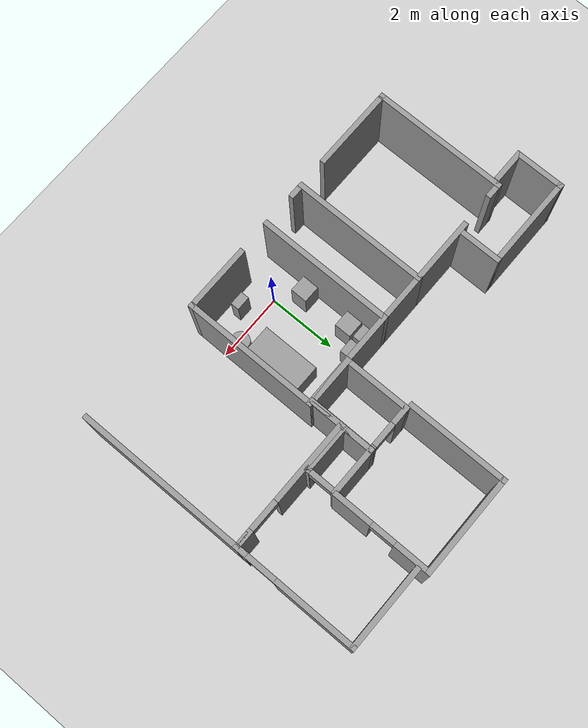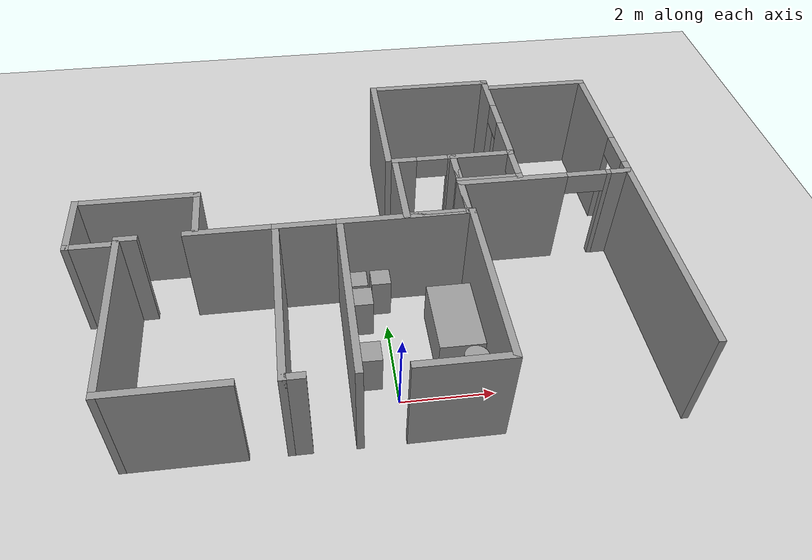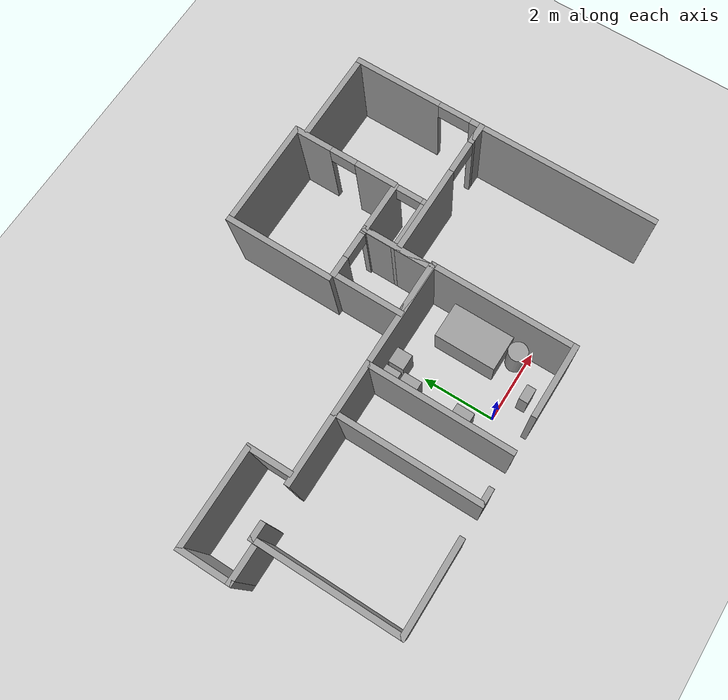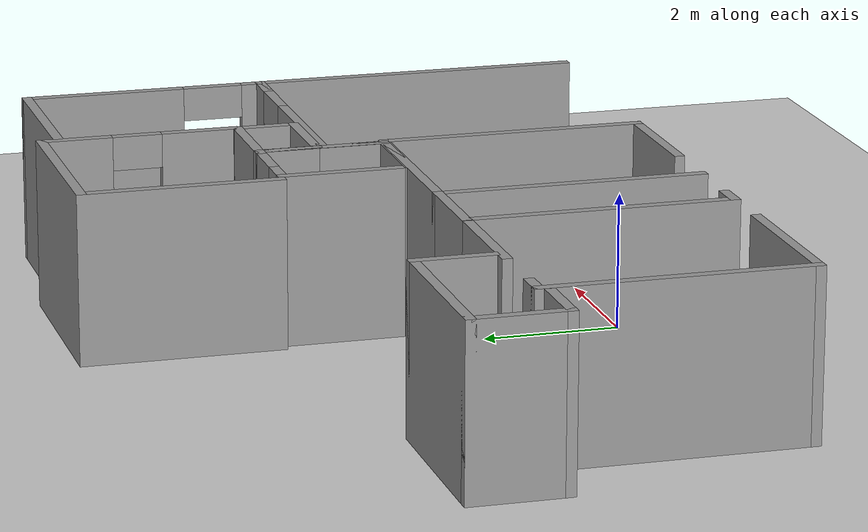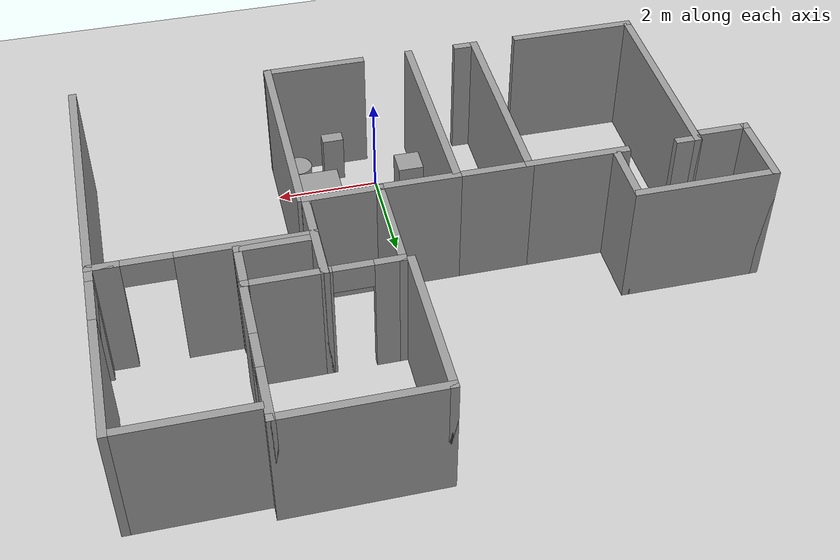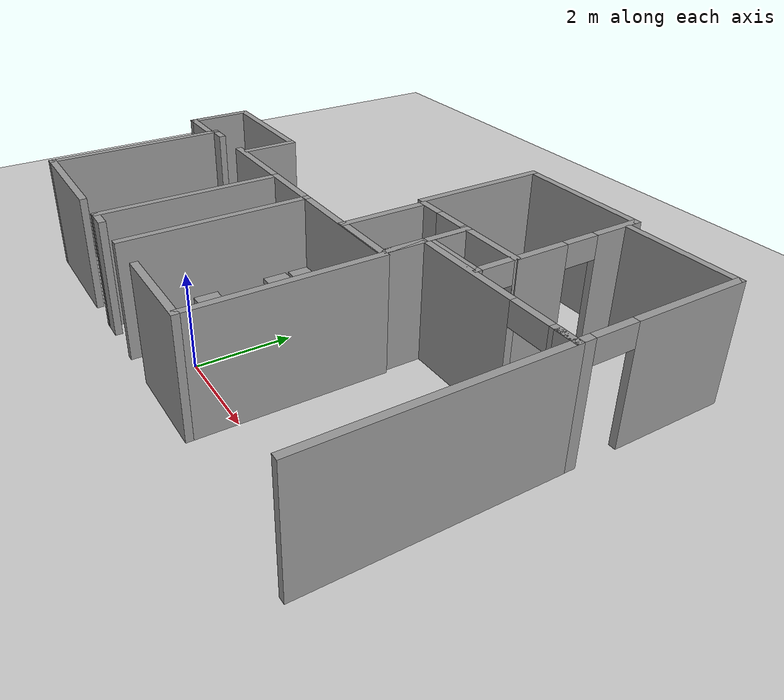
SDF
<sdf version="1.9">
 <world name="default">
  <model name="ground_plane">
   <static>true</static>
   <link name="link">
    <collision name="collision">
     <geometry><plane><normal>0 0 1</normal><size>100 100</size></plane></geometry>
     <surface><friction><ode><mu>100</mu><mu2>50</mu2></ode></friction></surface>
    </collision>
    <visual name="visual">
     <cast_shadows>false</cast_shadows>
     <geometry><plane><normal>0 0 1</normal><size>100 100</size></plane></geometry>
     <material>
      <script><uri>file://media/materials/scripts/gazebo.material</uri><name>Gazebo/Grey</name></script>
     </material>
    </visual>
   </link>
  </model>
  <model name="cma_escritorio">
   <pose>-1.7968200000000001 1.02121 0 0 0 0</pose>
   <link name="Wall_11">
    <collision name="Wall_11_Collision">
     <geometry><box><size>2 0.14999999999999999 2.5</size></box></geometry>
     <pose>0 0 1.25 0 0 0</pose>
    </collision>
    <visual name="Wall_11_Visual">
     <pose>0 0 1.25 0 0 0</pose>
     <geometry><box><size>2 0.14999999999999999 2.5</size></box></geometry>
     <material>
      <script><uri>file://media/materials/scripts/gazebo.material</uri><name>Gazebo/Grey</name></script>
      <ambient>1 1 1 1</ambient>
     </material>
    </visual>
    <pose>-1.3999999999999999 1.9299999999999999 0 0 0 3.1415899999999999</pose>
   </link>
   <link name="Wall_2">
    <collision name="Wall_2_Collision">
     <geometry><box><size>4 0.14999999999999999 2.5</size></box></geometry>
     <pose>0 0 1.25 0 0 0</pose>
    </collision>
    <visual name="Wall_2_Visual">
     <pose>0 0 1.25 0 0 0</pose>
     <geometry><box><size>4 0.14999999999999999 2.5</size></box></geometry>
     <material>
      <script><uri>file://media/materials/scripts/gazebo.material</uri><name>Gazebo/Grey</name></script>
      <ambient>1 1 1 1</ambient>
     </material>
    </visual>
    <pose>0.875 0.0050000000000000001 0 0 0 1.5708</pose>
   </link>
   <link name="Wall_25">
    <collision name="Wall_25_Collision">
     <geometry><box><size>2.5 0.14999999999999999 2.5</size></box></geometry>
     <pose>0 0 1.25 0 0 0</pose>
    </collision>
    <visual name="Wall_25_Visual">
     <pose>0 0 1.25 0 0 0</pose>
     <geometry><box><size>2.5 0.14999999999999999 2.5</size></box></geometry>
     <material>
      <script><uri>file://media/materials/scripts/gazebo.material</uri><name>Gazebo/Grey</name></script>
      <ambient>1 1 1 1</ambient>
     </material>
    </visual>
    <pose>-2.5499999999999998 -1.9299999999999999 0 0 0 3.1415899999999999</pose>
   </link>
   <link name="Wall_26">
    <collision name="Wall_26_Collision">
     <geometry><box><size>4 0.14999999999999999 2.5</size></box></geometry>
     <pose>0 0 1.25 0 0 0</pose>
    </collision>
    <visual name="Wall_26_Visual">
     <pose>0 0 1.25 0 0 0</pose>
     <geometry><box><size>4 0.14999999999999999 2.5</size></box></geometry>
     <material>
      <script><uri>file://media/materials/scripts/gazebo.material</uri><name>Gazebo/Grey</name></script>
      <ambient>1 1 1 1</ambient>
     </material>
    </visual>
    <pose>-3.7250000000000001 -0.0050000000000000001 0 0 0 1.5708</pose>
   </link>
   <link name="Wall_27">
    <collision name="Wall_27_Collision">
     <geometry><box><size>0.5 0.14999999999999999 2.5</size></box></geometry>
     <pose>0 0 1.25 0 0 0</pose>
    </collision>
    <visual name="Wall_27_Visual">
     <pose>0 0 1.25 0 0 0</pose>
     <geometry><box><size>0.5 0.14999999999999999 2.5</size></box></geometry>
     <material>
      <script><uri>file://media/materials/scripts/gazebo.material</uri><name>Gazebo/Grey</name></script>
      <ambient>1 1 1 1</ambient>
     </material>
    </visual>
    <pose>-3.5499999999999998 1.9199999999999999 0 0 0 0</pose>
   </link>
   <link name="Wall_3">
    <collision name="Wall_3_Collision">
     <geometry><box><size>3 0.14999999999999999 2.5</size></box></geometry>
     <pose>0 0 1.25 0 0 0</pose>
    </collision>
    <visual name="Wall_3_Visual">
     <pose>0 0 1.25 0 0 0</pose>
     <geometry><box><size>3 0.14999999999999999 2.5</size></box></geometry>
     <material>
      <script><uri>file://media/materials/scripts/gazebo.material</uri><name>Gazebo/Grey</name></script>
      <ambient>1 1 1 1</ambient>
     </material>
    </visual>
    <pose>2.2999999999999998 1.9299999999999999 0 0 0 0</pose>
   </link>
   <link name="Wall_4">
    <collision name="Wall_4_Collision">
     <geometry><box><size>4 0.14999999999999999 2.5</size></box></geometry>
     <pose>0 0 1.25 0 0 0</pose>
    </collision>
    <visual name="Wall_4_Visual">
     <pose>0 0 1.25 0 0 0</pose>
     <geometry><box><size>4 0.14999999999999999 2.5</size></box></geometry>
     <material>
      <script><uri>file://media/materials/scripts/gazebo.material</uri><name>Gazebo/Grey</name></script>
      <ambient>1 1 1 1</ambient>
     </material>
    </visual>
    <pose>3.7250000000000001 0.0050000000000000001 0 0 0 -1.5708</pose>
   </link>
   <link name="Wall_5">
    <collision name="Wall_5_Collision">
     <geometry><box><size>2 0.14999999999999999 2.5</size></box></geometry>
     <pose>0 0 1.25 0 0 0</pose>
    </collision>
    <visual name="Wall_5_Visual">
     <pose>0 0 1.25 0 0 0</pose>
     <geometry><box><size>2 0.14999999999999999 2.5</size></box></geometry>
     <material>
      <script><uri>file://media/materials/scripts/gazebo.material</uri><name>Gazebo/Grey</name></script>
      <ambient>1 1 1 1</ambient>
     </material>
    </visual>
    <pose>2.7999999999999998 -1.9199999999999999 0 0 0 3.1415899999999999</pose>
   </link>
   <link name="Wall_7">
    <collision name="Wall_7_Collision">
     <geometry><box><size>1.5 0.14999999999999999 2.5</size></box></geometry>
     <pose>0 0 1.25 0 0 0</pose>
    </collision>
    <visual name="Wall_7_Visual">
     <pose>0 0 1.25 0 0 0</pose>
     <geometry><box><size>1.5 0.14999999999999999 2.5</size></box></geometry>
     <material>
      <script><uri>file://media/materials/scripts/gazebo.material</uri><name>Gazebo/Grey</name></script>
      <ambient>1 1 1 1</ambient>
     </material>
    </visual>
    <pose>0.20000000000000001 1.9299999999999999 0 0 0 3.1415899999999999</pose>
   </link>
   <link name="Wall_8">
    <collision name="Wall_8_Collision">
     <geometry><box><size>4 0.14999999999999999 2.5</size></box></geometry>
     <pose>0 0 1.25 0 0 0</pose>
    </collision>
    <visual name="Wall_8_Visual">
     <pose>0 0 1.25 0 0 0</pose>
     <geometry><box><size>4 0.14999999999999999 2.5</size></box></geometry>
     <material>
      <script><uri>file://media/materials/scripts/gazebo.material</uri><name>Gazebo/Grey</name></script>
      <ambient>1 1 1 1</ambient>
     </material>
    </visual>
    <pose>-0.47499999999999998 0.0050000000000000001 0 0 0 -1.5708</pose>
   </link>
   <link name="Wall_9">
    <collision name="Wall_9_Collision">
     <geometry><box><size>0.5 0.14999999999999999 2.5</size></box></geometry>
     <pose>0 0 1.25 0 0 0</pose>
    </collision>
    <visual name="Wall_9_Visual">
     <pose>0 0 1.25 0 0 0</pose>
     <geometry><box><size>0.5 0.14999999999999999 2.5</size></box></geometry>
     <material>
      <script><uri>file://media/materials/scripts/gazebo.material</uri><name>Gazebo/Grey</name></script>
      <ambient>1 1 1 1</ambient>
     </material>
    </visual>
    <pose>-0.29999999999999999 -1.9199999999999999 0 0 0 0</pose>
   </link>
   <static>true</static>
  </model>
  <model name="cma_banheiro">
   <pose>-5.2292800000000002 3.4870999999999999 0 0 0 0</pose>
   <link name="Wall_0">
    <collision name="Wall_0_Collision">
     <geometry><box><size>1 0.14999999999999999 2.5</size></box></geometry>
     <pose>0 0 1.25 0 0 0</pose>
    </collision>
    <visual name="Wall_0_Visual">
     <pose>0 0 1.25 0 0 0</pose>
     <geometry><box><size>1 0.14999999999999999 2.5</size></box></geometry>
     <material>
      <script><uri>file://media/materials/scripts/gazebo.material</uri><name>Gazebo/Grey</name></script>
      <ambient>1 1 1 1</ambient>
     </material>
    </visual>
    <pose>-0.875 -0.67500000000000004 0 0 0 3.1415899999999999</pose>
   </link>
   <link name="Wall_1">
    <collision name="Wall_1_Collision">
     <geometry><box><size>1.5 0.14999999999999999 2.5</size></box></geometry>
     <pose>0 0 1.25 0 0 0</pose>
    </collision>
    <visual name="Wall_1_Visual">
     <pose>0 0 1.25 0 0 0</pose>
     <geometry><box><size>1.5 0.14999999999999999 2.5</size></box></geometry>
     <material>
      <script><uri>file://media/materials/scripts/gazebo.material</uri><name>Gazebo/Grey</name></script>
      <ambient>1 1 1 1</ambient>
     </material>
    </visual>
    <pose>-1.3 0 0 0 0 1.5708</pose>
   </link>
   <link name="Wall_2">
    <collision name="Wall_2_Collision">
     <geometry><box><size>2.75 0.14999999999999999 2.5</size></box></geometry>
     <pose>0 0 1.25 0 0 0</pose>
    </collision>
    <visual name="Wall_2_Visual">
     <pose>0 0 1.25 0 0 0</pose>
     <geometry><box><size>2.75 0.14999999999999999 2.5</size></box></geometry>
     <material>
      <script><uri>file://media/materials/scripts/gazebo.material</uri><name>Gazebo/Grey</name></script>
      <ambient>1 1 1 1</ambient>
     </material>
    </visual>
    <pose>0 0.67500000000000004 0 0 0 0</pose>
   </link>
   <link name="Wall_4">
    <collision name="Wall_4_Collision">
     <geometry><box><size>1.25 0.14999999999999999 2.5</size></box></geometry>
     <pose>0 0 1.25 0 0 0</pose>
    </collision>
    <visual name="Wall_4_Visual">
     <pose>0 0 1.25 0 0 0</pose>
     <geometry><box><size>1.25 0.14999999999999999 2.5</size></box></geometry>
     <material>
      <script><uri>file://media/materials/scripts/gazebo.material</uri><name>Gazebo/Grey</name></script>
      <ambient>1 1 1 1</ambient>
     </material>
    </visual>
    <pose>1.3 0.125 0 0 0 -1.5708</pose>
   </link>
   <static>true</static>
  </model>
  <model name="cma_L5">
   <pose>3.77502 1.45512 0 0 0 0</pose>
   <link name="Wall_0">
    <collision name="Wall_0_Collision">
     <geometry><box><size>1 0.14999999999999999 2.5</size></box></geometry>
     <pose>0 0 1.25 0 0 0</pose>
    </collision>
    <visual name="Wall_0_Visual">
     <pose>0 0 1.25 0 0 0</pose>
     <geometry><box><size>1 0.14999999999999999 2.5</size></box></geometry>
     <material>
      <script><uri>file://media/materials/scripts/gazebo.material</uri><name>Gazebo/Grey</name></script>
      <ambient>1 1 1 1</ambient>
     </material>
    </visual>
    <pose>-1.925 2 0 0 0 1.5708</pose>
   </link>
   <link name="Wall_1">
    <pose>0 2.4249999999999998 0 0 0 0</pose>
    <visual name="Wall_1_Visual_0">
     <pose>-0.75249999999999995 0 1.25 0 0 0</pose>
     <geometry><box><size>2.4950000000000001 0.14999999999999999 2.5</size></box></geometry>
     <material>
      <script><uri>file://media/materials/scripts/gazebo.material</uri><name>Gazebo/Grey</name></script>
      <ambient>1 1 1 1</ambient>
     </material>
    </visual>
    <collision name="Wall_1_Collision_0">
     <geometry><box><size>2.4950000000000001 0.14999999999999999 2.5</size></box></geometry>
     <pose>-0.75249999999999995 0 1.25 0 0 0</pose>
    </collision>
    <visual name="Wall_1_Visual_1">
     <pose>1.6975 0 1.25 0 0 0</pose>
     <geometry><box><size>0.60499999999999998 0.14999999999999999 2.5</size></box></geometry>
     <material>
      <script><uri>file://media/materials/scripts/gazebo.material</uri><name>Gazebo/Grey</name></script>
      <ambient>1 1 1 1</ambient>
     </material>
    </visual>
    <collision name="Wall_1_Collision_1">
     <geometry><box><size>0.60499999999999998 0.14999999999999999 2.5</size></box></geometry>
     <pose>1.6975 0 1.25 0 0 0</pose>
    </collision>
    <visual name="Wall_1_Visual_2">
     <pose>0.94499999999999995 0 2.25 0 0 0</pose>
     <geometry><box><size>0.90000000000000002 0.14999999999999999 0.5</size></box></geometry>
     <material>
      <script><uri>file://media/materials/scripts/gazebo.material</uri><name>Gazebo/Grey</name></script>
      <ambient>1 1 1 1</ambient>
     </material>
    </visual>
    <collision name="Wall_1_Collision_2">
     <geometry><box><size>0.90000000000000002 0.14999999999999999 0.5</size></box></geometry>
     <pose>0.94499999999999995 0 2.25 0 0 0</pose>
    </collision>
   </link>
   <link name="Wall_3">
    <collision name="Wall_3_Collision">
     <geometry><box><size>5 0.14999999999999999 2.5</size></box></geometry>
     <pose>0 0 1.25 0 0 0</pose>
    </collision>
    <visual name="Wall_3_Visual">
     <pose>0 0 1.25 0 0 0</pose>
     <geometry><box><size>5 0.14999999999999999 2.5</size></box></geometry>
     <material>
      <script><uri>file://media/materials/scripts/gazebo.material</uri><name>Gazebo/Grey</name></script>
      <ambient>1 1 1 1</ambient>
     </material>
    </visual>
    <pose>1.925 0 0 0 0 -1.5708</pose>
   </link>
   <static>true</static>
  </model>
  <model name="cma_dispensa">
   <pose>2.5258400000000001 4.4011899999999997 0 0 0 0</pose>
   <link name="Wall_5">
    <collision name="Wall_5_Collision">
     <geometry><box><size>1 0.14999999999999999 2.5</size></box></geometry>
     <pose>0 0 1.25 0 0 0</pose>
    </collision>
    <visual name="Wall_5_Visual">
     <pose>0 0 1.25 0 0 0</pose>
     <geometry><box><size>1 0.14999999999999999 2.5</size></box></geometry>
     <material>
      <script><uri>file://media/materials/scripts/gazebo.material</uri><name>Gazebo/Grey</name></script>
      <ambient>1 1 1 1</ambient>
     </material>
    </visual>
    <pose>-0.67500000000000004 0 0 0 0 1.5708</pose>
   </link>
   <link name="Wall_6">
    <collision name="Wall_6_Collision">
     <geometry><box><size>1.5 0.14999999999999999 2.5</size></box></geometry>
     <pose>0 0 1.25 0 0 0</pose>
    </collision>
    <visual name="Wall_6_Visual">
     <pose>0 0 1.25 0 0 0</pose>
     <geometry><box><size>1.5 0.14999999999999999 2.5</size></box></geometry>
     <material>
      <script><uri>file://media/materials/scripts/gazebo.material</uri><name>Gazebo/Grey</name></script>
      <ambient>1 1 1 1</ambient>
     </material>
    </visual>
    <pose>0 0.42499999999999999 0 0 0 0</pose>
   </link>
   <link name="Wall_7">
    <pose>0.67500000000000004 0 0 0 0 -1.5708</pose>
    <visual name="Wall_7_Visual_0">
     <pose>-0.42749999999999999 0 1.25 0 0 0</pose>
     <geometry><box><size>0.14499999999999999 0.14999999999999999 2.5</size></box></geometry>
     <material>
      <script><uri>file://media/materials/scripts/gazebo.material</uri><name>Gazebo/Grey</name></script>
      <ambient>1 1 1 1</ambient>
     </material>
    </visual>
    <collision name="Wall_7_Collision_0">
     <geometry><box><size>0.14499999999999999 0.14999999999999999 2.5</size></box></geometry>
     <pose>-0.42749999999999999 0 1.25 0 0 0</pose>
    </collision>
    <visual name="Wall_7_Visual_1">
     <pose>0.42249999999999999 0 1.25 0 0 0</pose>
     <geometry><box><size>0.155 0.14999999999999999 2.5</size></box></geometry>
     <material>
      <script><uri>file://media/materials/scripts/gazebo.material</uri><name>Gazebo/Grey</name></script>
      <ambient>1 1 1 1</ambient>
     </material>
    </visual>
    <collision name="Wall_7_Collision_1">
     <geometry><box><size>0.155 0.14999999999999999 2.5</size></box></geometry>
     <pose>0.42249999999999999 0 1.25 0 0 0</pose>
    </collision>
    <visual name="Wall_7_Visual_2">
     <pose>-0.0050000000000000001 0 2.25 0 0 0</pose>
     <geometry><box><size>0.69999999999999996 0.14999999999999999 0.5</size></box></geometry>
     <material>
      <script><uri>file://media/materials/scripts/gazebo.material</uri><name>Gazebo/Grey</name></script>
      <ambient>1 1 1 1</ambient>
     </material>
    </visual>
    <collision name="Wall_7_Collision_2">
     <geometry><box><size>0.69999999999999996 0.14999999999999999 0.5</size></box></geometry>
     <pose>-0.0050000000000000001 0 2.25 0 0 0</pose>
    </collision>
   </link>
   <link name="Wall_8">
    <collision name="Wall_8_Collision">
     <geometry><box><size>1.5 0.14999999999999999 2.5</size></box></geometry>
     <pose>0 0 1.25 0 0 0</pose>
    </collision>
    <visual name="Wall_8_Visual">
     <pose>0 0 1.25 0 0 0</pose>
     <geometry><box><size>1.5 0.14999999999999999 2.5</size></box></geometry>
     <material>
      <script><uri>file://media/materials/scripts/gazebo.material</uri><name>Gazebo/Grey</name></script>
      <ambient>1 1 1 1</ambient>
     </material>
    </visual>
    <pose>0 -0.42499999999999999 0 0 0 3.1415899999999999</pose>
   </link>
   <static>true</static>
  </model>
  <model name="cma_banheiro_e">
   <pose>1.1835800000000001 3.89879 0 0 0 0</pose>
   <link name="Wall_10">
    <collision name="Wall_10_Collision">
     <geometry><box><size>1.5 0.14999999999999999 2.5</size></box></geometry>
     <pose>0 0 1.25 0 0 0</pose>
    </collision>
    <visual name="Wall_10_Visual">
     <pose>0 0 1.25 0 0 0</pose>
     <geometry><box><size>1.5 0.14999999999999999 2.5</size></box></geometry>
     <material>
      <script><uri>file://media/materials/scripts/gazebo.material</uri><name>Gazebo/Grey</name></script>
      <ambient>1 1 1 1</ambient>
     </material>
    </visual>
    <pose>0 -0.92500000000000004 0 0 0 3.1415899999999999</pose>
   </link>
   <link name="Wall_11">
    <collision name="Wall_11_Collision">
     <geometry><box><size>2 0.14999999999999999 2.5</size></box></geometry>
     <pose>0 0 1.25 0 0 0</pose>
    </collision>
    <visual name="Wall_11_Visual">
     <pose>0 0 1.25 0 0 0</pose>
     <geometry><box><size>2 0.14999999999999999 2.5</size></box></geometry>
     <material>
      <script><uri>file://media/materials/scripts/gazebo.material</uri><name>Gazebo/Grey</name></script>
      <ambient>1 1 1 1</ambient>
     </material>
    </visual>
    <pose>-0.67500000000000004 0 0 0 0 1.5708</pose>
   </link>
   <link name="Wall_12">
    <pose>0 0.92500000000000004 0 0 0 0</pose>
    <visual name="Wall_12_Visual_0">
     <pose>-0.46250000000000002 0 1.25 0 0 0</pose>
     <geometry><box><size>0.57499999999999996 0.14999999999999999 2.5</size></box></geometry>
     <material>
      <script><uri>file://media/materials/scripts/gazebo.material</uri><name>Gazebo/Grey</name></script>
      <ambient>1 1 1 1</ambient>
     </material>
    </visual>
    <collision name="Wall_12_Collision_0">
     <geometry><box><size>0.57499999999999996 0.14999999999999999 2.5</size></box></geometry>
     <pose>-0.46250000000000002 0 1.25 0 0 0</pose>
    </collision>
    <visual name="Wall_12_Visual_1">
     <pose>0.64749999999999996 0 1.25 0 0 0</pose>
     <geometry><box><size>0.20499999999999999 0.14999999999999999 2.5</size></box></geometry>
     <material>
      <script><uri>file://media/materials/scripts/gazebo.material</uri><name>Gazebo/Grey</name></script>
      <ambient>1 1 1 1</ambient>
     </material>
    </visual>
    <collision name="Wall_12_Collision_1">
     <geometry><box><size>0.20499999999999999 0.14999999999999999 2.5</size></box></geometry>
     <pose>0.64749999999999996 0 1.25 0 0 0</pose>
    </collision>
    <visual name="Wall_12_Visual_2">
     <pose>0.185 0 2.25 0 0 0</pose>
     <geometry><box><size>0.71999999999999997 0.14999999999999999 0.5</size></box></geometry>
     <material>
      <script><uri>file://media/materials/scripts/gazebo.material</uri><name>Gazebo/Grey</name></script>
      <ambient>1 1 1 1</ambient>
     </material>
    </visual>
    <collision name="Wall_12_Collision_2">
     <geometry><box><size>0.71999999999999997 0.14999999999999999 0.5</size></box></geometry>
     <pose>0.185 0 2.25 0 0 0</pose>
    </collision>
   </link>
   <link name="Wall_13">
    <collision name="Wall_13_Collision">
     <geometry><box><size>2 0.14999999999999999 2.5</size></box></geometry>
     <pose>0 0 1.25 0 0 0</pose>
    </collision>
    <visual name="Wall_13_Visual">
     <pose>0 0 1.25 0 0 0</pose>
     <geometry><box><size>2 0.14999999999999999 2.5</size></box></geometry>
     <material>
      <script><uri>file://media/materials/scripts/gazebo.material</uri><name>Gazebo/Grey</name></script>
      <ambient>1 1 1 1</ambient>
     </material>
    </visual>
    <pose>0.67500000000000004 0 0 0 0 -1.5708</pose>
   </link>
   <static>true</static>
  </model>
  <model name="cma_qe">
   <pose>1.7956099999999999 6.3122800000000003 0 0 0 0</pose>
   <link name="Wall_15">
    <collision name="Wall_15_Collision">
     <geometry><box><size>3 0.14999999999999999 2.5</size></box></geometry>
     <pose>0 0 1.25 0 0 0</pose>
    </collision>
    <visual name="Wall_15_Visual">
     <pose>0 0 1.25 0 0 0</pose>
     <geometry><box><size>3 0.14999999999999999 2.5</size></box></geometry>
     <material>
      <script><uri>file://media/materials/scripts/gazebo.material</uri><name>Gazebo/Grey</name></script>
      <ambient>1 1 1 1</ambient>
     </material>
    </visual>
    <pose>-1.425 0 0 0 0 1.5708</pose>
   </link>
   <link name="Wall_16">
    <collision name="Wall_16_Collision">
     <geometry><box><size>3 0.14999999999999999 2.5</size></box></geometry>
     <pose>0 0 1.25 0 0 0</pose>
    </collision>
    <visual name="Wall_16_Visual">
     <pose>0 0 1.25 0 0 0</pose>
     <geometry><box><size>3 0.14999999999999999 2.5</size></box></geometry>
     <material>
      <script><uri>file://media/materials/scripts/gazebo.material</uri><name>Gazebo/Grey</name></script>
      <ambient>1 1 1 1</ambient>
     </material>
    </visual>
    <pose>0 1.425 0 0 0 0</pose>
   </link>
   <link name="Wall_17">
    <pose>1.425 0 0 0 0 -1.5708</pose>
    <visual name="Wall_17_Visual_0">
     <pose>-0.94499999999999995 0 1.25 0 0 0</pose>
     <geometry><box><size>1.1100000000000001 0.14999999999999999 2.5</size></box></geometry>
     <material>
      <script><uri>file://media/materials/scripts/gazebo.material</uri><name>Gazebo/Grey</name></script>
      <ambient>1 1 1 1</ambient>
     </material>
    </visual>
    <collision name="Wall_17_Collision_0">
     <geometry><box><size>1.1100000000000001 0.14999999999999999 2.5</size></box></geometry>
     <pose>-0.94499999999999995 0 1.25 0 0 0</pose>
    </collision>
    <visual name="Wall_17_Visual_1">
     <pose>0.92000000000000004 0 1.25 0 0 0</pose>
     <geometry><box><size>1.1599999999999999 0.14999999999999999 2.5</size></box></geometry>
     <material>
      <script><uri>file://media/materials/scripts/gazebo.material</uri><name>Gazebo/Grey</name></script>
      <ambient>1 1 1 1</ambient>
     </material>
    </visual>
    <collision name="Wall_17_Collision_1">
     <geometry><box><size>1.1599999999999999 0.14999999999999999 2.5</size></box></geometry>
     <pose>0.92000000000000004 0 1.25 0 0 0</pose>
    </collision>
    <visual name="Wall_17_Visual_2">
     <pose>-0.025000000000000001 0 2.25 0 0 0</pose>
     <geometry><box><size>0.72999999999999998 0.14999999999999999 0.5</size></box></geometry>
     <material>
      <script><uri>file://media/materials/scripts/gazebo.material</uri><name>Gazebo/Grey</name></script>
      <ambient>1 1 1 1</ambient>
     </material>
    </visual>
    <collision name="Wall_17_Collision_2">
     <geometry><box><size>0.72999999999999998 0.14999999999999999 0.5</size></box></geometry>
     <pose>-0.025000000000000001 0 2.25 0 0 0</pose>
    </collision>
   </link>
   <static>true</static>
  </model>
  <model name="cma_area2">
   <pose>4.5227500000000003 5.6786199999999996 0 0 0 0</pose>
   <link name="Wall_23">
    <collision name="Wall_23_Collision">
     <geometry><box><size>2.5 0.14999999999999999 2.5</size></box></geometry>
     <pose>0 0 1.25 0 0 0</pose>
    </collision>
    <visual name="Wall_23_Visual">
     <pose>0 0 1.25 0 0 0</pose>
     <geometry><box><size>2.5 0.14999999999999999 2.5</size></box></geometry>
     <material>
      <script><uri>file://media/materials/scripts/gazebo.material</uri><name>Gazebo/Grey</name></script>
      <ambient>1 1 1 1</ambient>
     </material>
    </visual>
    <pose>0 1.8 0 0 0 0</pose>
   </link>
   <link name="Wall_24">
    <pose>1.175 0 0 0 0 -1.5708</pose>
    <visual name="Wall_24_Visual_0">
     <pose>-0.64249999999999996 0 1.25 0 0 0</pose>
     <geometry><box><size>2.4649999999999999 0.14999999999999999 2.5</size></box></geometry>
     <material>
      <script><uri>file://media/materials/scripts/gazebo.material</uri><name>Gazebo/Grey</name></script>
      <ambient>1 1 1 1</ambient>
     </material>
    </visual>
    <collision name="Wall_24_Collision_0">
     <geometry><box><size>2.4649999999999999 0.14999999999999999 2.5</size></box></geometry>
     <pose>-0.64249999999999996 0 1.25 0 0 0</pose>
    </collision>
    <visual name="Wall_24_Visual_1">
     <pose>1.6825000000000001 0 1.25 0 0 0</pose>
     <geometry><box><size>0.38500000000000001 0.14999999999999999 2.5</size></box></geometry>
     <material>
      <script><uri>file://media/materials/scripts/gazebo.material</uri><name>Gazebo/Grey</name></script>
      <ambient>1 1 1 1</ambient>
     </material>
    </visual>
    <collision name="Wall_24_Collision_1">
     <geometry><box><size>0.38500000000000001 0.14999999999999999 2.5</size></box></geometry>
     <pose>1.6825000000000001 0 1.25 0 0 0</pose>
    </collision>
    <visual name="Wall_24_Visual_2">
     <pose>1.04 0 2.25 0 0 0</pose>
     <geometry><box><size>0.90000000000000002 0.14999999999999999 0.5</size></box></geometry>
     <material>
      <script><uri>file://media/materials/scripts/gazebo.material</uri><name>Gazebo/Grey</name></script>
      <ambient>1 1 1 1</ambient>
     </material>
    </visual>
    <collision name="Wall_24_Collision_2">
     <geometry><box><size>0.90000000000000002 0.14999999999999999 0.5</size></box></geometry>
     <pose>1.04 0 2.25 0 0 0</pose>
    </collision>
   </link>
   <link name="Wall_25">
    <collision name="Wall_25_Collision">
     <geometry><box><size>0.5 0.14999999999999999 2.5</size></box></geometry>
     <pose>0 0 1.25 0 0 0</pose>
    </collision>
    <visual name="Wall_25_Visual">
     <pose>0 0 1.25 0 0 0</pose>
     <geometry><box><size>0.5 0.14999999999999999 2.5</size></box></geometry>
     <material>
      <script><uri>file://media/materials/scripts/gazebo.material</uri><name>Gazebo/Grey</name></script>
      <ambient>1 1 1 1</ambient>
     </material>
    </visual>
    <pose>1 -1.8 0 0 0 3.1415899999999999</pose>
   </link>
   <static>true</static>
  </model>
  <model name="cma_picador_0">
   <link name="link_2">
    <pose>-0.7258 -1.6910400000000001 0 0 0 0</pose>
    <inertial>
     <mass>0.10473200000000001</mass>
     <inertia>
      <ixx>0.0092790600000000004</ixx>
      <ixy>0</ixy>
      <ixz>0</ixz>
      <iyy>0.010243</iyy>
      <iyz>0</iyz>
      <izz>0.0020667200000000002</izz>
     </inertia>
    </inertial>
    <visual name="visual">
     <geometry><box><size>0.416688 0.25134000000000001 1</size></box></geometry>
     <material>
      <lighting>true</lighting>
      <script><uri>file://media/materials/scripts/gazebo.material</uri><name>Gazebo/Grey</name></script>
      <ambient>0.300000012 0.300000012 0.300000012 1</ambient>
      <diffuse>0.699999988 0.699999988 0.699999988 1</diffuse>
      <specular>0.00999999978 0.00999999978 0.00999999978 1</specular>
      <emissive>0 0 0 1</emissive>
     </material>
    </visual>
    <collision name="collision">
     <geometry><box><size>0.416688 0.25134000000000001 1</size></box></geometry>
     <surface>
      <friction>
       <ode><mu>1</mu><mu2>1</mu2><fdir1>0 0 0</fdir1><slip1>0</slip1><slip2>0</slip2></ode>
       <torsional>
        <coefficient>1</coefficient>
        <patch_radius>0</patch_radius>
        <surface_radius>0</surface_radius>
        <use_patch_radius>true</use_patch_radius>
        <ode><slip>0</slip></ode>
       </torsional>
      </friction>
      <bounce><restitution_coefficient>0</restitution_coefficient><threshold>1000000</threshold></bounce>
      <contact>
       <collide_without_contact>false</collide_without_contact>
       <collide_without_contact_bitmask>1</collide_without_contact_bitmask>
       <collide_bitmask>1</collide_bitmask>
       <ode>
        <soft_cfm>0</soft_cfm>
        <soft_erp>0.20000000000000001</soft_erp>
        <kp>10000000000000</kp>
        <kd>1</kd>
        <max_vel>0.01</max_vel>
        <min_depth>0</min_depth>
       </ode>
       <bullet>
        <split_impulse>true</split_impulse>
        <split_impulse_penetration_threshold>-0.01</split_impulse_penetration_threshold>
        <soft_cfm>0</soft_cfm>
        <soft_erp>0.20000000000000001</soft_erp>
        <kp>10000000000000</kp>
        <kd>1</kd>
       </bullet>
      </contact>
     </surface>
    </collision>
   </link>
   <static>false</static>
   <pose>1.51146 1.2277499999999999 0.500004 2.0000000000000008e-06 -2.0000000000000008e-06 -0.00051000000000000015</pose>
  </model>
  <model name="cma_cesto">
   <link name="link_1">
    <pose>-0.32965899999999998 -1.55494 0 0 0 0</pose>
    <inertial>
     <mass>0.267897</mass>
     <inertia>
      <ixx>0.026810199999999999</ixx>
      <ixy>0</ixy>
      <ixz>0</ixz>
      <iyy>0.026810199999999999</iyy>
      <iyz>0</iyz>
      <izz>0.0089711099999999992</izz>
     </inertia>
    </inertial>
    <visual name="visual">
     <geometry><cylinder><radius>0.25879200000000002</radius><length>1</length></cylinder></geometry>
     <material>
      <lighting>true</lighting>
      <script><uri>file://media/materials/scripts/gazebo.material</uri><name>Gazebo/Grey</name></script>
      <ambient>0.300000012 0.300000012 0.300000012 1</ambient>
      <diffuse>0.699999988 0.699999988 0.699999988 1</diffuse>
      <specular>0.00999999978 0.00999999978 0.00999999978 1</specular>
      <emissive>0 0 0 1</emissive>
     </material>
    </visual>
    <collision name="collision">
     <geometry><cylinder><radius>0.25879200000000002</radius><length>1</length></cylinder></geometry>
     <surface>
      <friction>
       <ode><mu>1</mu><mu2>1</mu2><fdir1>0 0 0</fdir1><slip1>0</slip1><slip2>0</slip2></ode>
       <torsional>
        <coefficient>1</coefficient>
        <patch_radius>0</patch_radius>
        <surface_radius>0</surface_radius>
        <use_patch_radius>true</use_patch_radius>
        <ode><slip>0</slip></ode>
       </torsional>
      </friction>
      <bounce><restitution_coefficient>0</restitution_coefficient><threshold>1000000</threshold></bounce>
      <contact>
       <collide_without_contact>false</collide_without_contact>
       <collide_without_contact_bitmask>1</collide_without_contact_bitmask>
       <collide_bitmask>1</collide_bitmask>
       <ode>
        <soft_cfm>0</soft_cfm>
        <soft_erp>0.20000000000000001</soft_erp>
        <kp>10000000000000</kp>
        <kd>1</kd>
        <max_vel>0.01</max_vel>
        <min_depth>0</min_depth>
       </ode>
       <bullet>
        <split_impulse>true</split_impulse>
        <split_impulse_penetration_threshold>-0.01</split_impulse_penetration_threshold>
        <soft_cfm>0</soft_cfm>
        <soft_erp>0.20000000000000001</soft_erp>
        <kp>10000000000000</kp>
        <kd>1</kd>
       </bullet>
      </contact>
     </surface>
    </collision>
   </link>
   <static>false</static>
   <pose>1.94445 1.8207500000000001 0.49999199999999999 0 0 -0.013203000000000001</pose>
  </model>
  <model name="cma_sofa_2_lugares">
   <link name="link_0">
    <pose>-0.034013000000000002 -0.039828000000000002 0 0 0 0</pose>
    <inertial>
     <mass>1.6607099999999999</mass>
     <inertia>
      <ixx>0.53818299999999997</ixx>
      <ixy>0</ixy>
      <ixz>0</ixz>
      <iyy>0.27051900000000001</iyy>
      <iyz>0</iyz>
      <izz>0.53191500000000003</izz>
     </inertia>
    </inertial>
    <visual name="visual">
     <geometry><box><size>0.97714699999999999 1.6996800000000001 1</size></box></geometry>
     <material>
      <lighting>true</lighting>
      <script><uri>file://media/materials/scripts/gazebo.material</uri><name>Gazebo/Grey</name></script>
      <ambient>0.300000012 0.300000012 0.300000012 1</ambient>
      <diffuse>0.699999988 0.699999988 0.699999988 1</diffuse>
      <specular>0.00999999978 0.00999999978 0.00999999978 1</specular>
      <emissive>0 0 0 1</emissive>
     </material>
    </visual>
    <collision name="collision">
     <geometry><box><size>0.97714699999999999 1.6996800000000001 1</size></box></geometry>
     <surface>
      <friction>
       <ode><mu>1</mu><mu2>1</mu2><fdir1>0 0 0</fdir1><slip1>0</slip1><slip2>0</slip2></ode>
       <torsional>
        <coefficient>1</coefficient>
        <patch_radius>0</patch_radius>
        <surface_radius>0</surface_radius>
        <use_patch_radius>true</use_patch_radius>
        <ode><slip>0</slip></ode>
       </torsional>
      </friction>
      <bounce><restitution_coefficient>0</restitution_coefficient><threshold>1000000</threshold></bounce>
      <contact>
       <collide_without_contact>false</collide_without_contact>
       <collide_without_contact_bitmask>1</collide_without_contact_bitmask>
       <collide_bitmask>1</collide_bitmask>
       <ode>
        <soft_cfm>0</soft_cfm>
        <soft_erp>0.20000000000000001</soft_erp>
        <kp>10000000000000</kp>
        <kd>1</kd>
        <max_vel>0.01</max_vel>
        <min_depth>0</min_depth>
       </ode>
       <bullet>
        <split_impulse>true</split_impulse>
        <split_impulse_penetration_threshold>-0.01</split_impulse_penetration_threshold>
        <soft_cfm>0</soft_cfm>
        <soft_erp>0.20000000000000001</soft_erp>
        <kp>10000000000000</kp>
        <kd>1</kd>
       </bullet>
      </contact>
     </surface>
    </collision>
   </link>
   <static>false</static>
   <pose>1.3982000000000001 1.4330099999999999 0.49999500000000002 0 9.0000000000000002e-06 0.00046799999999999994</pose>
  </model>
  <model name="cma_gaveteiro_pequeno">
   <link name="link_0">
    <pose>0.25617400000000001 1.2505500000000001 0.5 0 0 0</pose>
    <inertial>
     <mass>0.18718599999999999</mass>
     <inertia>
      <ixx>0.018509999999999999</ixx>
      <ixy>0</ixy>
      <ixz>0</ixz>
      <iyy>0.018527600000000002</iyy>
      <iyz>0</iyz>
      <izz>0.00583981</izz>
     </inertia>
    </inertial>
    <visual name="visual">
     <geometry><box><size>0.43331700000000001 0.432002 1</size></box></geometry>
     <material>
      <lighting>true</lighting>
      <script><uri>file://media/materials/scripts/gazebo.material</uri><name>Gazebo/Grey</name></script>
      <ambient>0.300000012 0.300000012 0.300000012 1</ambient>
      <diffuse>0.699999988 0.699999988 0.699999988 1</diffuse>
      <specular>0.00999999978 0.00999999978 0.00999999978 1</specular>
      <emissive>0 0 0 1</emissive>
     </material>
    </visual>
    <collision name="collision">
     <geometry><box><size>0.43331700000000001 0.432002 1</size></box></geometry>
     <surface>
      <friction>
       <ode><mu>1</mu><mu2>1</mu2><fdir1>0 0 0</fdir1><slip1>0</slip1><slip2>0</slip2></ode>
       <torsional>
        <coefficient>1</coefficient>
        <patch_radius>0</patch_radius>
        <surface_radius>0</surface_radius>
        <use_patch_radius>true</use_patch_radius>
        <ode><slip>0</slip></ode>
       </torsional>
      </friction>
      <bounce><restitution_coefficient>0</restitution_coefficient><threshold>1000000</threshold></bounce>
      <contact>
       <collide_without_contact>false</collide_without_contact>
       <collide_without_contact_bitmask>1</collide_without_contact_bitmask>
       <collide_bitmask>1</collide_bitmask>
       <ode>
        <soft_cfm>0</soft_cfm>
        <soft_erp>0.20000000000000001</soft_erp>
        <kp>10000000000000</kp>
        <kd>1</kd>
        <max_vel>0.01</max_vel>
        <min_depth>0</min_depth>
       </ode>
       <bullet>
        <split_impulse>true</split_impulse>
        <split_impulse_penetration_threshold>-0.01</split_impulse_penetration_threshold>
        <soft_cfm>0</soft_cfm>
        <soft_erp>0.20000000000000001</soft_erp>
        <kp>10000000000000</kp>
        <kd>1</kd>
       </bullet>
      </contact>
     </surface>
    </collision>
   </link>
   <static>false</static>
   <pose>-0.85306099999999996 1.39432 0 0 -6.999999999999999e-06 9.9999999999999991e-06</pose>
  </model>
  <model name="cma_gaveteiro_pequeno_0">
   <link name="link_0">
    <pose>0.25617400000000001 1.2505500000000001 0.5 0 0 0</pose>
    <inertial>
     <mass>0.18718599999999999</mass>
     <inertia>
      <ixx>0.018509999999999999</ixx>
      <ixy>0</ixy>
      <ixz>0</ixz>
      <iyy>0.018527600000000002</iyy>
      <iyz>0</iyz>
      <izz>0.00583981</izz>
     </inertia>
    </inertial>
    <visual name="visual">
     <geometry><box><size>0.43331700000000001 0.432002 1</size></box></geometry>
     <material>
      <lighting>true</lighting>
      <script><uri>file://media/materials/scripts/gazebo.material</uri><name>Gazebo/Grey</name></script>
      <ambient>0.300000012 0.300000012 0.300000012 1</ambient>
      <diffuse>0.699999988 0.699999988 0.699999988 1</diffuse>
      <specular>0.00999999978 0.00999999978 0.00999999978 1</specular>
      <emissive>0 0 0 1</emissive>
     </material>
    </visual>
    <collision name="collision">
     <geometry><box><size>0.43331700000000001 0.432002 1</size></box></geometry>
     <surface>
      <friction>
       <ode><mu>1</mu><mu2>1</mu2><fdir1>0 0 0</fdir1><slip1>0</slip1><slip2>0</slip2></ode>
       <torsional>
        <coefficient>1</coefficient>
        <patch_radius>0</patch_radius>
        <surface_radius>0</surface_radius>
        <use_patch_radius>true</use_patch_radius>
        <ode><slip>0</slip></ode>
       </torsional>
      </friction>
      <bounce><restitution_coefficient>0</restitution_coefficient><threshold>1000000</threshold></bounce>
      <contact>
       <collide_without_contact>false</collide_without_contact>
       <collide_without_contact_bitmask>1</collide_without_contact_bitmask>
       <collide_bitmask>1</collide_bitmask>
       <ode>
        <soft_cfm>0</soft_cfm>
        <soft_erp>0.20000000000000001</soft_erp>
        <kp>10000000000000</kp>
        <kd>1</kd>
        <max_vel>0.01</max_vel>
        <min_depth>0</min_depth>
       </ode>
       <bullet>
        <split_impulse>true</split_impulse>
        <split_impulse_penetration_threshold>-0.01</split_impulse_penetration_threshold>
        <soft_cfm>0</soft_cfm>
        <soft_erp>0.20000000000000001</soft_erp>
        <kp>10000000000000</kp>
        <kd>1</kd>
       </bullet>
      </contact>
     </surface>
    </collision>
   </link>
   <static>false</static>
   <pose>-0.341279 1.3951 0 2.5849394142915424e-26 -6.9999999999999999e-06 -3.4999999999999997e-05</pose>
  </model>
  <model name="cma_gaveteiro">
   <link name="link_0">
    <pose>0 3.9999999999999998e-06 0 0 0 0</pose>
    <inertial>
     <mass>0.245086</mass>
     <inertia>
      <ixx>0.025418</ixx>
      <ixy>0</ixy>
      <ixz>0</ixz>
      <iyy>0.025441100000000001</iyy>
      <iyz>0</iyz>
      <izz>0.010011300000000001</izz>
     </inertia>
    </inertial>
    <visual name="visual">
     <geometry><box><size>0.49565700000000001 0.49449100000000001 1</size></box></geometry>
     <material>
      <lighting>true</lighting>
      <script><uri>file://media/materials/scripts/gazebo.material</uri><name>Gazebo/Grey</name></script>
      <ambient>0.300000012 0.300000012 0.300000012 1</ambient>
      <diffuse>0.699999988 0.699999988 0.699999988 1</diffuse>
      <specular>0.00999999978 0.00999999978 0.00999999978 1</specular>
      <emissive>0 0 0 1</emissive>
     </material>
    </visual>
    <collision name="collision">
     <geometry><box><size>0.49565700000000001 0.49449100000000001 1</size></box></geometry>
     <surface>
      <friction>
       <ode><mu>1</mu><mu2>1</mu2><fdir1>0 0 0</fdir1><slip1>0</slip1><slip2>0</slip2></ode>
       <torsional>
        <coefficient>1</coefficient>
        <patch_radius>0</patch_radius>
        <surface_radius>0</surface_radius>
        <use_patch_radius>true</use_patch_radius>
        <ode><slip>0</slip></ode>
       </torsional>
      </friction>
      <bounce><restitution_coefficient>0</restitution_coefficient><threshold>1000000</threshold></bounce>
      <contact>
       <collide_without_contact>false</collide_without_contact>
       <collide_without_contact_bitmask>1</collide_without_contact_bitmask>
       <collide_bitmask>1</collide_bitmask>
       <ode>
        <soft_cfm>0</soft_cfm>
        <soft_erp>0.20000000000000001</soft_erp>
        <kp>10000000000000</kp>
        <kd>1</kd>
        <max_vel>0.01</max_vel>
        <min_depth>0</min_depth>
       </ode>
       <bullet>
        <split_impulse>true</split_impulse>
        <split_impulse_penetration_threshold>-0.01</split_impulse_penetration_threshold>
        <soft_cfm>0</soft_cfm>
        <soft_erp>0.20000000000000001</soft_erp>
        <kp>10000000000000</kp>
        <kd>1</kd>
       </bullet>
      </contact>
     </surface>
    </collision>
   </link>
   <static>false</static>
   <pose>-0.56907300000000005 2.12229 0.5 1.0000000000000002e-06 1.0000000000000002e-06 0.00019100000000000001</pose>
  </model>
  <model name="cma_gaveteiro_0">
   <link name="link_0">
    <pose>0 3.9999999999999998e-06 0 0 0 0</pose>
    <inertial>
     <mass>0.245086</mass>
     <inertia>
      <ixx>0.025418</ixx>
      <ixy>0</ixy>
      <ixz>0</ixz>
      <iyy>0.025441100000000001</iyy>
      <iyz>0</iyz>
      <izz>0.010011300000000001</izz>
     </inertia>
    </inertial>
    <visual name="visual">
     <geometry><box><size>0.49565700000000001 0.49449100000000001 1</size></box></geometry>
     <material>
      <lighting>true</lighting>
      <script><uri>file://media/materials/scripts/gazebo.material</uri><name>Gazebo/Grey</name></script>
      <ambient>0.300000012 0.300000012 0.300000012 1</ambient>
      <diffuse>0.699999988 0.699999988 0.699999988 1</diffuse>
      <specular>0.00999999978 0.00999999978 0.00999999978 1</specular>
      <emissive>0 0 0 1</emissive>
     </material>
    </visual>
    <collision name="collision">
     <geometry><box><size>0.49565700000000001 0.49449100000000001 1</size></box></geometry>
     <surface>
      <friction>
       <ode><mu>1</mu><mu2>1</mu2><fdir1>0 0 0</fdir1><slip1>0</slip1><slip2>0</slip2></ode>
       <torsional>
        <coefficient>1</coefficient>
        <patch_radius>0</patch_radius>
        <surface_radius>0</surface_radius>
        <use_patch_radius>true</use_patch_radius>
        <ode><slip>0</slip></ode>
       </torsional>
      </friction>
      <bounce><restitution_coefficient>0</restitution_coefficient><threshold>1000000</threshold></bounce>
      <contact>
       <collide_without_contact>false</collide_without_contact>
       <collide_without_contact_bitmask>1</collide_without_contact_bitmask>
       <collide_bitmask>1</collide_bitmask>
       <ode>
        <soft_cfm>0</soft_cfm>
        <soft_erp>0.20000000000000001</soft_erp>
        <kp>10000000000000</kp>
        <kd>1</kd>
        <max_vel>0.01</max_vel>
        <min_depth>0</min_depth>
       </ode>
       <bullet>
        <split_impulse>true</split_impulse>
        <split_impulse_penetration_threshold>-0.01</split_impulse_penetration_threshold>
        <soft_cfm>0</soft_cfm>
        <soft_erp>0.20000000000000001</soft_erp>
        <kp>10000000000000</kp>
        <kd>1</kd>
       </bullet>
      </contact>
     </surface>
    </collision>
   </link>
   <static>false</static>
   <pose>-0.56012600000000001 0.62358400000000003 0.50000100000000003 1.9999999999999999e-06 1.0000000000000002e-06 -0.0078919999999999997</pose>
  </model>
 </world>
</sdf>
